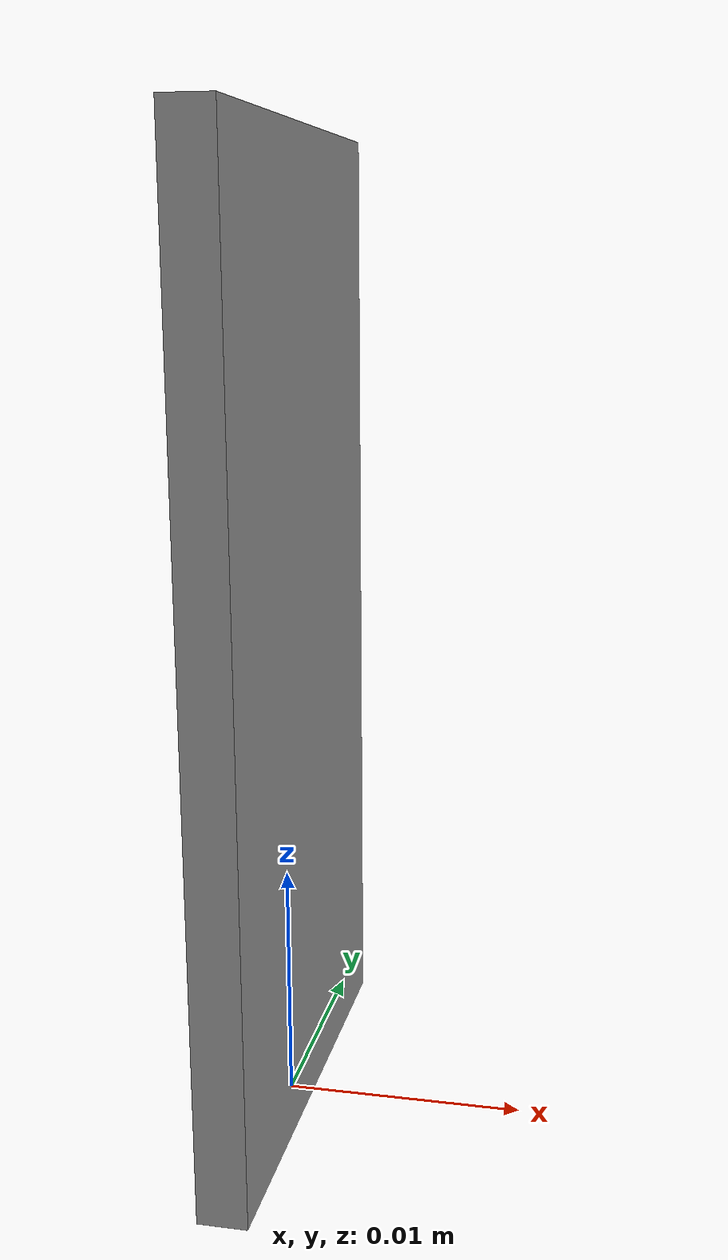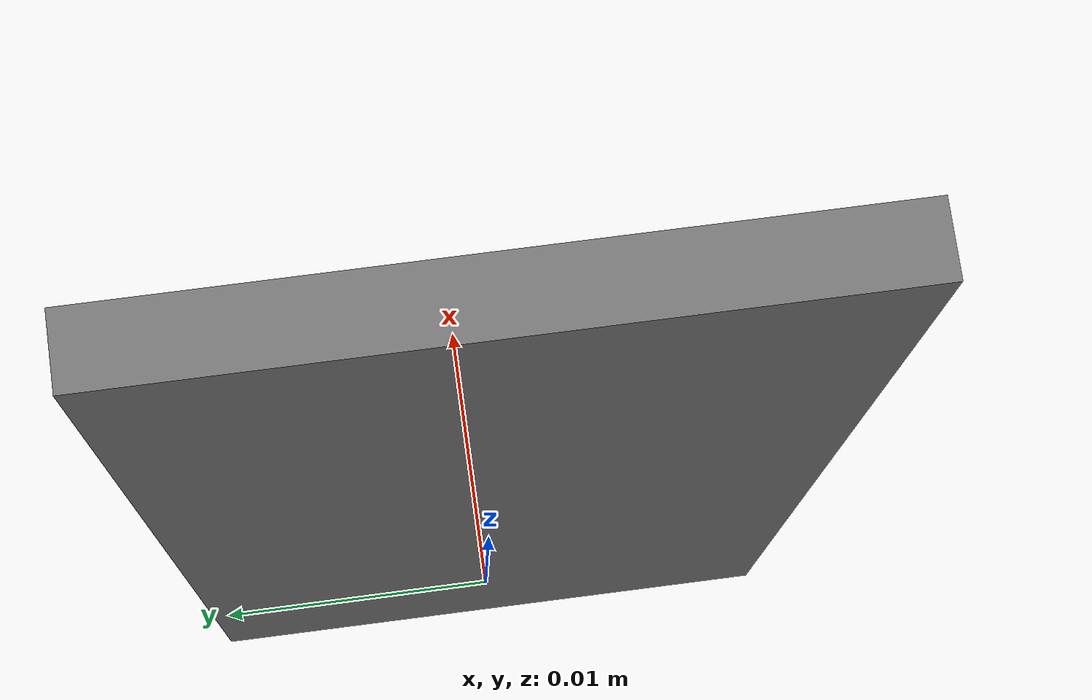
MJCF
<mujoco>
  <compiler meshdir="assets/meshes" texturedir="assets/textures" autolimits="true"/>

  <asset>

  </asset>

  <default>

        <!-- Domino -->
        <default class="domino">
          <geom   type="box"  friction="1" />
        </default>

  </default>

  <worldbody>

        <body pos="0 0 0.02" euler="0 0 0">

      <joint type="free"   />

          <geom class="domino" size="0.001 0.01 0.02"/>
        </body>

  </worldbody>

</mujoco>
